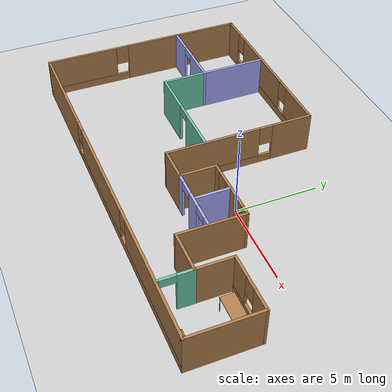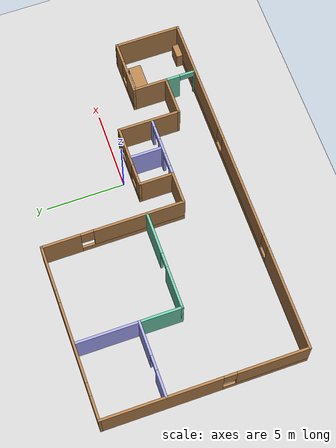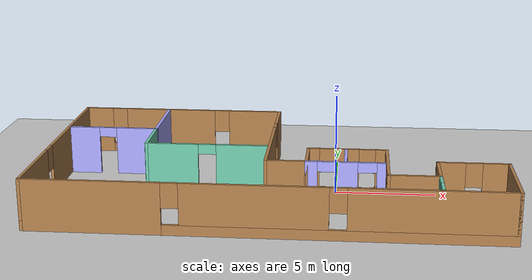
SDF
<sdf version="1.7">
 <world name="default">
  <model name="ground_plane">
   <static>1</static>
   <link name="link">
    <collision name="collision">
     <geometry><plane><normal>0 0 1</normal><size>100 100</size></plane></geometry>
     <surface>
      <contact><collide_bitmask>65535</collide_bitmask></contact>
      <friction><ode><mu>100</mu><mu2>50</mu2></ode></friction>
     </surface>
    </collision>
    <visual name="visual">
     <cast_shadows>0</cast_shadows>
     <geometry><plane><normal>0 0 1</normal><size>100 100</size></plane></geometry>
     <material>
      <script><uri>file://media/materials/scripts/gazebo.material</uri><name>Gazebo/Grey</name></script>
     </material>
    </visual>
   </link>
  </model>
  <model name="model">
   <pose>-2.971 -0.141859 0 0 -0 0</pose>
   <link name="Wall_1">
    <pose>-11.175 -0.000141 0 0 -0 -1.5708</pose>
    <visual name="Wall_1_Visual_0">
     <pose>-2.63427 0 1.25 0 -0 0</pose>
     <geometry><box><size>7.43146 0.15 2.5</size></box></geometry>
     <material>
      <script><uri>file://media/materials/scripts/gazebo.material</uri><name>Gazebo/Wood</name></script>
      <ambient>1 1 1 1</ambient>
     </material>
     <meta><layer>0</layer></meta>
    </visual>
    <collision name="Wall_1_Collision_0">
     <geometry><box><size>7.43146 0.15 2.5</size></box></geometry>
     <pose>-2.63427 0 1.25 0 -0 0</pose>
    </collision>
    <visual name="Wall_1_Visual_1">
     <pose>3.71573 0 0.25 0 -0 0</pose>
     <geometry><box><size>5.26854 0.15 0.5</size></box></geometry>
     <material>
      <script><uri>file://media/materials/scripts/gazebo.material</uri><name>Gazebo/Wood</name></script>
      <ambient>1 1 1 1</ambient>
     </material>
     <meta><layer>0</layer></meta>
    </visual>
    <collision name="Wall_1_Collision_1">
     <geometry><box><size>5.26854 0.15 0.5</size></box></geometry>
     <pose>3.71573 0 0.25 0 -0 0</pose>
    </collision>
    <visual name="Wall_1_Visual_2">
     <pose>4.11573 0 1.5 0 -0 0</pose>
     <geometry><box><size>4.46854 0.15 2</size></box></geometry>
     <material>
      <script><uri>file://media/materials/scripts/gazebo.material</uri><name>Gazebo/Wood</name></script>
      <ambient>1 1 1 1</ambient>
     </material>
     <meta><layer>0</layer></meta>
    </visual>
    <collision name="Wall_1_Collision_2">
     <geometry><box><size>4.46854 0.15 2</size></box></geometry>
     <pose>4.11573 0 1.5 0 -0 0</pose>
    </collision>
    <visual name="Wall_1_Visual_3">
     <pose>1.48146 0 1.9 0 -0 0</pose>
     <geometry><box><size>0.8 0.15 1.2</size></box></geometry>
     <material>
      <script><uri>file://media/materials/scripts/gazebo.material</uri><name>Gazebo/Wood</name></script>
      <ambient>1 1 1 1</ambient>
     </material>
     <meta><layer>0</layer></meta>
    </visual>
    <collision name="Wall_1_Collision_3">
     <geometry><box><size>0.8 0.15 1.2</size></box></geometry>
     <pose>1.48146 0 1.9 0 -0 0</pose>
    </collision>
   </link>
   <link name="Wall_10">
    <collision name="Wall_10_Collision">
     <geometry><box><size>2 0.15 2.5</size></box></geometry>
     <pose>0 0 1.25 0 -0 0</pose>
    </collision>
    <visual name="Wall_10_Visual">
     <pose>0 0 1.25 0 -0 0</pose>
     <geometry><box><size>2 0.15 2.5</size></box></geometry>
     <material>
      <script><uri>file://media/materials/scripts/gazebo.material</uri><name>Gazebo/Wood</name></script>
      <ambient>1 1 1 1</ambient>
     </material>
     <meta><layer>0</layer></meta>
    </visual>
    <pose>0.69978 -2.57513 0 0 -0 3.14158</pose>
   </link>
   <link name="Wall_19">
    <pose>-5.75 6.27486 0 0 -0 0</pose>
    <visual name="Wall_19_Visual_0">
     <pose>-4.73477 0 1.25 0 -0 0</pose>
     <geometry><box><size>1.53047 0.15 2.5</size></box></geometry>
     <material>
      <script><uri>file://media/materials/scripts/gazebo.material</uri><name>Gazebo/Wood</name></script>
      <ambient>1 1 1 1</ambient>
     </material>
     <meta><layer>0</layer></meta>
    </visual>
    <collision name="Wall_19_Collision_0">
     <geometry><box><size>1.53047 0.15 2.5</size></box></geometry>
     <pose>-4.73477 0 1.25 0 -0 0</pose>
    </collision>
    <visual name="Wall_19_Visual_1">
     <pose>0.765234 0 0.25 0 -0 0</pose>
     <geometry><box><size>9.46953 0.15 0.5</size></box></geometry>
     <material>
      <script><uri>file://media/materials/scripts/gazebo.material</uri><name>Gazebo/Wood</name></script>
      <ambient>1 1 1 1</ambient>
     </material>
     <meta><layer>0</layer></meta>
    </visual>
    <collision name="Wall_19_Collision_1">
     <geometry><box><size>9.46953 0.15 0.5</size></box></geometry>
     <pose>0.765234 0 0.25 0 -0 0</pose>
    </collision>
    <visual name="Wall_19_Visual_2">
     <pose>-0.67987 0 1.5 0 -0 0</pose>
     <geometry><box><size>4.97933 0.15 2</size></box></geometry>
     <material>
      <script><uri>file://media/materials/scripts/gazebo.material</uri><name>Gazebo/Wood</name></script>
      <ambient>1 1 1 1</ambient>
     </material>
     <meta><layer>0</layer></meta>
    </visual>
    <collision name="Wall_19_Collision_2">
     <geometry><box><size>4.97933 0.15 2</size></box></geometry>
     <pose>-0.67987 0 1.5 0 -0 0</pose>
    </collision>
    <visual name="Wall_19_Visual_3">
     <pose>4.0549 0 1.5 0 -0 0</pose>
     <geometry><box><size>2.89021 0.15 2</size></box></geometry>
     <material>
      <script><uri>file://media/materials/scripts/gazebo.material</uri><name>Gazebo/Wood</name></script>
      <ambient>1 1 1 1</ambient>
     </material>
     <meta><layer>0</layer></meta>
    </visual>
    <collision name="Wall_19_Collision_3">
     <geometry><box><size>2.89021 0.15 2</size></box></geometry>
     <pose>4.0549 0 1.5 0 -0 0</pose>
    </collision>
    <visual name="Wall_19_Visual_4">
     <pose>-3.56953 0 1.9 0 -0 0</pose>
     <geometry><box><size>0.8 0.15 1.2</size></box></geometry>
     <material>
      <script><uri>file://media/materials/scripts/gazebo.material</uri><name>Gazebo/Wood</name></script>
      <ambient>1 1 1 1</ambient>
     </material>
     <meta><layer>0</layer></meta>
    </visual>
    <collision name="Wall_19_Collision_4">
     <geometry><box><size>0.8 0.15 1.2</size></box></geometry>
     <pose>-3.56953 0 1.9 0 -0 0</pose>
    </collision>
    <visual name="Wall_19_Visual_5">
     <pose>2.20979 0 1.9 0 -0 0</pose>
     <geometry><box><size>0.8 0.15 1.2</size></box></geometry>
     <material>
      <script><uri>file://media/materials/scripts/gazebo.material</uri><name>Gazebo/Wood</name></script>
      <ambient>1 1 1 1</ambient>
     </material>
     <meta><layer>0</layer></meta>
    </visual>
    <collision name="Wall_19_Collision_5">
     <geometry><box><size>0.8 0.15 1.2</size></box></geometry>
     <pose>2.20979 0 1.9 0 -0 0</pose>
    </collision>
   </link>
   <link name="Wall_2">
    <pose>0 -6.27514 0 0 -0 0</pose>
    <visual name="Wall_2_Visual_0">
     <pose>-7.97532 0 1.25 0 -0 0</pose>
     <geometry><box><size>6.54936 0.15 2.5</size></box></geometry>
     <material>
      <script><uri>file://media/materials/scripts/gazebo.material</uri><name>Gazebo/Wood</name></script>
      <ambient>1 1 1 1</ambient>
     </material>
     <meta><layer>0</layer></meta>
    </visual>
    <collision name="Wall_2_Collision_0">
     <geometry><box><size>6.54936 0.15 2.5</size></box></geometry>
     <pose>-7.97532 0 1.25 0 -0 0</pose>
    </collision>
    <visual name="Wall_2_Visual_1">
     <pose>3.27468 0 0.25 0 -0 0</pose>
     <geometry><box><size>15.9506 0.15 0.5</size></box></geometry>
     <material>
      <script><uri>file://media/materials/scripts/gazebo.material</uri><name>Gazebo/Wood</name></script>
      <ambient>1 1 1 1</ambient>
     </material>
     <meta><layer>0</layer></meta>
    </visual>
    <collision name="Wall_2_Collision_1">
     <geometry><box><size>15.9506 0.15 0.5</size></box></geometry>
     <pose>3.27468 0 0.25 0 -0 0</pose>
    </collision>
    <visual name="Wall_2_Visual_2">
     <pose>-0.528875 0 1.5 0 -0 0</pose>
     <geometry><box><size>6.74354 0.15 2</size></box></geometry>
     <material>
      <script><uri>file://media/materials/scripts/gazebo.material</uri><name>Gazebo/Wood</name></script>
      <ambient>1 1 1 1</ambient>
     </material>
     <meta><layer>0</layer></meta>
    </visual>
    <collision name="Wall_2_Collision_2">
     <geometry><box><size>6.74354 0.15 2</size></box></geometry>
     <pose>-0.528875 0 1.5 0 -0 0</pose>
    </collision>
    <visual name="Wall_2_Visual_3">
     <pose>7.44645 0 1.5 0 -0 0</pose>
     <geometry><box><size>7.6071 0.15 2</size></box></geometry>
     <material>
      <script><uri>file://media/materials/scripts/gazebo.material</uri><name>Gazebo/Wood</name></script>
      <ambient>1 1 1 1</ambient>
     </material>
     <meta><layer>0</layer></meta>
    </visual>
    <collision name="Wall_2_Collision_3">
     <geometry><box><size>7.6071 0.15 2</size></box></geometry>
     <pose>7.44645 0 1.5 0 -0 0</pose>
    </collision>
    <visual name="Wall_2_Visual_4">
     <pose>-4.30065 0 1.9 0 -0 0</pose>
     <geometry><box><size>0.8 0.15 1.2</size></box></geometry>
     <material>
      <script><uri>file://media/materials/scripts/gazebo.material</uri><name>Gazebo/Wood</name></script>
      <ambient>1 1 1 1</ambient>
     </material>
     <meta><layer>0</layer></meta>
    </visual>
    <collision name="Wall_2_Collision_4">
     <geometry><box><size>0.8 0.15 1.2</size></box></geometry>
     <pose>-4.30065 0 1.9 0 -0 0</pose>
    </collision>
    <visual name="Wall_2_Visual_5">
     <pose>3.24289 0 1.9 0 -0 0</pose>
     <geometry><box><size>0.8 0.15 1.2</size></box></geometry>
     <material>
      <script><uri>file://media/materials/scripts/gazebo.material</uri><name>Gazebo/Wood</name></script>
      <ambient>1 1 1 1</ambient>
     </material>
     <meta><layer>0</layer></meta>
    </visual>
    <collision name="Wall_2_Collision_5">
     <geometry><box><size>0.8 0.15 1.2</size></box></geometry>
     <pose>3.24289 0 1.9 0 -0 0</pose>
    </collision>
   </link>
   <link name="Wall_20">
    <pose>-0.325 1.84986 0 0 -0 -1.5708</pose>
    <visual name="Wall_20_Visual_0">
     <pose>-3.26344 0 1.25 0 -0 0</pose>
     <geometry><box><size>2.47369 0.15 2.5</size></box></geometry>
     <material>
      <script><uri>file://media/materials/scripts/gazebo.material</uri><name>Gazebo/Wood</name></script>
      <ambient>1 1 1 1</ambient>
     </material>
     <meta><layer>0</layer></meta>
    </visual>
    <collision name="Wall_20_Collision_0">
     <geometry><box><size>2.47369 0.15 2.5</size></box></geometry>
     <pose>-3.26344 0 1.25 0 -0 0</pose>
    </collision>
    <visual name="Wall_20_Visual_1">
     <pose>1.23685 0 0.25 0 -0 0</pose>
     <geometry><box><size>6.52687 0.15 0.5</size></box></geometry>
     <material>
      <script><uri>file://media/materials/scripts/gazebo.material</uri><name>Gazebo/Wood</name></script>
      <ambient>1 1 1 1</ambient>
     </material>
     <meta><layer>0</layer></meta>
    </visual>
    <collision name="Wall_20_Collision_1">
     <geometry><box><size>6.52687 0.15 0.5</size></box></geometry>
     <pose>1.23685 0 0.25 0 -0 0</pose>
    </collision>
    <visual name="Wall_20_Visual_2">
     <pose>1.63685 0 1.5 0 -0 0</pose>
     <geometry><box><size>5.72687 0.15 2</size></box></geometry>
     <material>
      <script><uri>file://media/materials/scripts/gazebo.material</uri><name>Gazebo/Wood</name></script>
      <ambient>1 1 1 1</ambient>
     </material>
     <meta><layer>0</layer></meta>
    </visual>
    <collision name="Wall_20_Collision_2">
     <geometry><box><size>5.72687 0.15 2</size></box></geometry>
     <pose>1.63685 0 1.5 0 -0 0</pose>
    </collision>
    <visual name="Wall_20_Visual_3">
     <pose>-1.62659 0 1.9 0 -0 0</pose>
     <geometry><box><size>0.8 0.15 1.2</size></box></geometry>
     <material>
      <script><uri>file://media/materials/scripts/gazebo.material</uri><name>Gazebo/Wood</name></script>
      <ambient>1 1 1 1</ambient>
     </material>
     <meta><layer>0</layer></meta>
    </visual>
    <collision name="Wall_20_Collision_3">
     <geometry><box><size>0.8 0.15 1.2</size></box></geometry>
     <pose>-1.62659 0 1.9 0 -0 0</pose>
    </collision>
   </link>
   <link name="Wall_22">
    <pose>7.825 -5.25014 0 0 -0 -1.5708</pose>
    <visual name="Wall_22_Visual_0">
     <pose>-0.510461 0 1.25 0 -0 0</pose>
     <geometry><box><size>0.979077 0.15 2.5</size></box></geometry>
     <material>
      <script><uri>file://media/materials/scripts/gazebo.material</uri><name>Gazebo/Grey</name></script>
      <ambient>0.435294 0.796078 0.67451 1</ambient>
     </material>
     <meta><layer>0</layer></meta>
    </visual>
    <collision name="Wall_22_Collision_0">
     <geometry><box><size>0.979077 0.15 2.5</size></box></geometry>
     <pose>-0.510461 0 1.25 0 -0 0</pose>
    </collision>
    <visual name="Wall_22_Visual_1">
     <pose>0.939539 0 1.25 0 -0 0</pose>
     <geometry><box><size>0.120923 0.15 2.5</size></box></geometry>
     <material>
      <script><uri>file://media/materials/scripts/gazebo.material</uri><name>Gazebo/Grey</name></script>
      <ambient>0.435294 0.796078 0.67451 1</ambient>
     </material>
     <meta><layer>0</layer></meta>
    </visual>
    <collision name="Wall_22_Collision_1">
     <geometry><box><size>0.120923 0.15 2.5</size></box></geometry>
     <pose>0.939539 0 1.25 0 -0 0</pose>
    </collision>
    <visual name="Wall_22_Visual_2">
     <pose>0.429077 0 2.25 0 -0 0</pose>
     <geometry><box><size>0.9 0.15 0.5</size></box></geometry>
     <material>
      <script><uri>file://media/materials/scripts/gazebo.material</uri><name>Gazebo/Grey</name></script>
      <ambient>0.435294 0.796078 0.67451 1</ambient>
     </material>
     <meta><layer>0</layer></meta>
    </visual>
    <collision name="Wall_22_Collision_2">
     <geometry><box><size>0.9 0.15 0.5</size></box></geometry>
     <pose>0.429077 0 2.25 0 -0 0</pose>
    </collision>
   </link>
   <link name="Wall_25">
    <collision name="Wall_25_Collision">
     <geometry><box><size>4 0.15 2.5</size></box></geometry>
     <pose>0 0 1.25 0 -0 0</pose>
    </collision>
    <visual name="Wall_25_Visual">
     <pose>0 0 1.25 0 -0 0</pose>
     <geometry><box><size>4 0.15 2.5</size></box></geometry>
     <material>
      <script><uri>file://media/materials/scripts/gazebo.material</uri><name>Gazebo/Grey</name></script>
      <ambient>0.666667 0.666667 1 1</ambient>
     </material>
     <meta><layer>0</layer></meta>
    </visual>
    <pose>-6.52178 4.25874 0 0 -0 -1.57091</pose>
   </link>
   <link name="Wall_26">
    <pose>-8.82178 2.33374 0 0 -0 -3.14154</pose>
    <visual name="Wall_26_Visual_0">
     <pose>-1.28498 0 1.25 0 -0 0</pose>
     <geometry><box><size>2.18005 0.15 2.5</size></box></geometry>
     <material>
      <script><uri>file://media/materials/scripts/gazebo.material</uri><name>Gazebo/Grey</name></script>
      <ambient>0.666667 0.666667 1 1</ambient>
     </material>
     <meta><layer>0</layer></meta>
    </visual>
    <collision name="Wall_26_Collision_0">
     <geometry><box><size>2.18005 0.15 2.5</size></box></geometry>
     <pose>-1.28498 0 1.25 0 -0 0</pose>
    </collision>
    <visual name="Wall_26_Visual_1">
     <pose>1.54002 0 1.25 0 -0 0</pose>
     <geometry><box><size>1.66995 0.15 2.5</size></box></geometry>
     <material>
      <script><uri>file://media/materials/scripts/gazebo.material</uri><name>Gazebo/Grey</name></script>
      <ambient>0.666667 0.666667 1 1</ambient>
     </material>
     <meta><layer>0</layer></meta>
    </visual>
    <collision name="Wall_26_Collision_1">
     <geometry><box><size>1.66995 0.15 2.5</size></box></geometry>
     <pose>1.54002 0 1.25 0 -0 0</pose>
    </collision>
    <visual name="Wall_26_Visual_2">
     <pose>0.255046 0 2.25 0 -0 0</pose>
     <geometry><box><size>0.9 0.15 0.5</size></box></geometry>
     <material>
      <script><uri>file://media/materials/scripts/gazebo.material</uri><name>Gazebo/Grey</name></script>
      <ambient>0.666667 0.666667 1 1</ambient>
     </material>
     <meta><layer>0</layer></meta>
    </visual>
    <collision name="Wall_26_Collision_2">
     <geometry><box><size>0.9 0.15 0.5</size></box></geometry>
     <pose>0.255046 0 2.25 0 -0 0</pose>
    </collision>
   </link>
   <link name="Wall_28">
    <collision name="Wall_28_Collision">
     <geometry><box><size>2.75 0.15 2.5</size></box></geometry>
     <pose>0 0 1.25 0 -0 0</pose>
    </collision>
    <visual name="Wall_28_Visual">
     <pose>0 0 1.25 0 -0 0</pose>
     <geometry><box><size>2.75 0.15 2.5</size></box></geometry>
     <material>
      <script><uri>file://media/materials/scripts/gazebo.material</uri><name>Gazebo/Grey</name></script>
      <ambient>0.435294 0.796078 0.67451 1</ambient>
     </material>
     <meta><layer>0</layer></meta>
    </visual>
    <pose>-6.522 1.03386 0 0 -0 -1.5708</pose>
   </link>
   <link name="Wall_29">
    <pose>-3.472 -0.266141 0 0 -0 0</pose>
    <visual name="Wall_29_Visual_0">
     <pose>-1.77642 0 1.25 0 -0 0</pose>
     <geometry><box><size>2.69717 0.15 2.5</size></box></geometry>
     <material>
      <script><uri>file://media/materials/scripts/gazebo.material</uri><name>Gazebo/Grey</name></script>
      <ambient>0.435294 0.796078 0.67451 1</ambient>
     </material>
     <meta><layer>0</layer></meta>
    </visual>
    <collision name="Wall_29_Collision_0">
     <geometry><box><size>2.69717 0.15 2.5</size></box></geometry>
     <pose>-1.77642 0 1.25 0 -0 0</pose>
    </collision>
    <visual name="Wall_29_Visual_1">
     <pose>1.79858 0 1.25 0 -0 0</pose>
     <geometry><box><size>2.65283 0.15 2.5</size></box></geometry>
     <material>
      <script><uri>file://media/materials/scripts/gazebo.material</uri><name>Gazebo/Grey</name></script>
      <ambient>0.435294 0.796078 0.67451 1</ambient>
     </material>
     <meta><layer>0</layer></meta>
    </visual>
    <collision name="Wall_29_Collision_1">
     <geometry><box><size>2.65283 0.15 2.5</size></box></geometry>
     <pose>1.79858 0 1.25 0 -0 0</pose>
    </collision>
    <visual name="Wall_29_Visual_2">
     <pose>0.022167 0 2.25 0 -0 0</pose>
     <geometry><box><size>0.9 0.15 0.5</size></box></geometry>
     <material>
      <script><uri>file://media/materials/scripts/gazebo.material</uri><name>Gazebo/Grey</name></script>
      <ambient>0.435294 0.796078 0.67451 1</ambient>
     </material>
     <meta><layer>0</layer></meta>
    </visual>
    <collision name="Wall_29_Collision_2">
     <geometry><box><size>0.9 0.15 0.5</size></box></geometry>
     <pose>0.022167 0 2.25 0 -0 0</pose>
    </collision>
   </link>
   <link name="Wall_3">
    <collision name="Wall_3_Collision">
     <geometry><box><size>4.2 0.15 2.5</size></box></geometry>
     <pose>0 0 1.25 0 -0 0</pose>
    </collision>
    <visual name="Wall_3_Visual">
     <pose>0 0 1.25 0 -0 0</pose>
     <geometry><box><size>4.2 0.15 2.5</size></box></geometry>
     <material>
      <script><uri>file://media/materials/scripts/gazebo.material</uri><name>Gazebo/Wood</name></script>
      <ambient>1 1 1 1</ambient>
     </material>
     <meta><layer>0</layer></meta>
    </visual>
    <pose>11.175 -4.25014 0 0 -0 1.5708</pose>
   </link>
   <link name="Wall_31">
    <pose>3.54978 -2.57513 0 0 -0 5e-06</pose>
    <visual name="Wall_31_Visual_0">
     <pose>-1.69788 0 1.25 0 -0 0</pose>
     <geometry><box><size>0.604236 0.15 2.5</size></box></geometry>
     <material>
      <script><uri>file://media/materials/scripts/gazebo.material</uri><name>Gazebo/Grey</name></script>
      <ambient>0.666667 0.666667 1 1</ambient>
     </material>
     <meta><layer>0</layer></meta>
    </visual>
    <collision name="Wall_31_Collision_0">
     <geometry><box><size>0.604236 0.15 2.5</size></box></geometry>
     <pose>-1.69788 0 1.25 0 -0 0</pose>
    </collision>
    <visual name="Wall_31_Visual_1">
     <pose>0.012277 0 1.25 0 -0 0</pose>
     <geometry><box><size>1.01608 0.15 2.5</size></box></geometry>
     <material>
      <script><uri>file://media/materials/scripts/gazebo.material</uri><name>Gazebo/Grey</name></script>
      <ambient>0.666667 0.666667 1 1</ambient>
     </material>
     <meta><layer>0</layer></meta>
    </visual>
    <collision name="Wall_31_Collision_1">
     <geometry><box><size>1.01608 0.15 2.5</size></box></geometry>
     <pose>0.012277 0 1.25 0 -0 0</pose>
    </collision>
    <visual name="Wall_31_Visual_2">
     <pose>1.71016 0 1.25 0 -0 0</pose>
     <geometry><box><size>0.579681 0.15 2.5</size></box></geometry>
     <material>
      <script><uri>file://media/materials/scripts/gazebo.material</uri><name>Gazebo/Grey</name></script>
      <ambient>0.666667 0.666667 1 1</ambient>
     </material>
     <meta><layer>0</layer></meta>
    </visual>
    <collision name="Wall_31_Collision_2">
     <geometry><box><size>0.579681 0.15 2.5</size></box></geometry>
     <pose>1.71016 0 1.25 0 -0 0</pose>
    </collision>
    <visual name="Wall_31_Visual_3">
     <pose>-0.945764 0 2.25 0 -0 0</pose>
     <geometry><box><size>0.9 0.15 0.5</size></box></geometry>
     <material>
      <script><uri>file://media/materials/scripts/gazebo.material</uri><name>Gazebo/Grey</name></script>
      <ambient>0.666667 0.666667 1 1</ambient>
     </material>
     <meta><layer>0</layer></meta>
    </visual>
    <collision name="Wall_31_Collision_3">
     <geometry><box><size>0.9 0.15 0.5</size></box></geometry>
     <pose>-0.945764 0 2.25 0 -0 0</pose>
    </collision>
    <visual name="Wall_31_Visual_4">
     <pose>0.970319 0 2.25 0 -0 0</pose>
     <geometry><box><size>0.9 0.15 0.5</size></box></geometry>
     <material>
      <script><uri>file://media/materials/scripts/gazebo.material</uri><name>Gazebo/Grey</name></script>
      <ambient>0.666667 0.666667 1 1</ambient>
     </material>
     <meta><layer>0</layer></meta>
    </visual>
    <collision name="Wall_31_Collision_4">
     <geometry><box><size>0.9 0.15 0.5</size></box></geometry>
     <pose>0.970319 0 2.25 0 -0 0</pose>
    </collision>
   </link>
   <link name="Wall_33">
    <collision name="Wall_33_Collision">
     <geometry><box><size>2 0.15 2.5</size></box></geometry>
     <pose>0 0 1.25 0 -0 0</pose>
    </collision>
    <visual name="Wall_33_Visual">
     <pose>0 0 1.25 0 -0 0</pose>
     <geometry><box><size>2 0.15 2.5</size></box></geometry>
     <material>
      <script><uri>file://media/materials/scripts/gazebo.material</uri><name>Gazebo/Grey</name></script>
      <ambient>0.666667 0.666667 1 1</ambient>
     </material>
     <meta><layer>0</layer></meta>
    </visual>
    <pose>3.48579 -1.49406 0 0 -0 -1.5708</pose>
   </link>
   <link name="Wall_4">
    <pose>9.5 -2.22514 0 0 -0 3.14159</pose>
    <visual name="Wall_4_Visual_0">
     <pose>-1.09466 0 1.25 0 -0 0</pose>
     <geometry><box><size>1.31068 0.15 2.5</size></box></geometry>
     <material>
      <script><uri>file://media/materials/scripts/gazebo.material</uri><name>Gazebo/Wood</name></script>
      <ambient>1 1 1 1</ambient>
     </material>
     <meta><layer>0</layer></meta>
    </visual>
    <collision name="Wall_4_Collision_0">
     <geometry><box><size>1.31068 0.15 2.5</size></box></geometry>
     <pose>-1.09466 0 1.25 0 -0 0</pose>
    </collision>
    <visual name="Wall_4_Visual_1">
     <pose>0.655341 0 0.25 0 -0 0</pose>
     <geometry><box><size>2.18932 0.15 0.5</size></box></geometry>
     <material>
      <script><uri>file://media/materials/scripts/gazebo.material</uri><name>Gazebo/Wood</name></script>
      <ambient>1 1 1 1</ambient>
     </material>
     <meta><layer>0</layer></meta>
    </visual>
    <collision name="Wall_4_Collision_1">
     <geometry><box><size>2.18932 0.15 0.5</size></box></geometry>
     <pose>0.655341 0 0.25 0 -0 0</pose>
    </collision>
    <visual name="Wall_4_Visual_2">
     <pose>1.05534 0 1.5 0 -0 0</pose>
     <geometry><box><size>1.38932 0.15 2</size></box></geometry>
     <material>
      <script><uri>file://media/materials/scripts/gazebo.material</uri><name>Gazebo/Wood</name></script>
      <ambient>1 1 1 1</ambient>
     </material>
     <meta><layer>0</layer></meta>
    </visual>
    <collision name="Wall_4_Collision_2">
     <geometry><box><size>1.38932 0.15 2</size></box></geometry>
     <pose>1.05534 0 1.5 0 -0 0</pose>
    </collision>
    <visual name="Wall_4_Visual_3">
     <pose>-0.039318 0 1.9 0 -0 0</pose>
     <geometry><box><size>0.8 0.15 1.2</size></box></geometry>
     <material>
      <script><uri>file://media/materials/scripts/gazebo.material</uri><name>Gazebo/Wood</name></script>
      <ambient>1 1 1 1</ambient>
     </material>
     <meta><layer>0</layer></meta>
    </visual>
    <collision name="Wall_4_Collision_3">
     <geometry><box><size>0.8 0.15 1.2</size></box></geometry>
     <pose>-0.039318 0 1.9 0 -0 0</pose>
    </collision>
   </link>
   <link name="Wall_5">
    <collision name="Wall_5_Collision">
     <geometry><box><size>2.25 0.15 2.5</size></box></geometry>
     <pose>0 0 1.25 0 -0 0</pose>
    </collision>
    <visual name="Wall_5_Visual">
     <pose>0 0 1.25 0 -0 0</pose>
     <geometry><box><size>2.25 0.15 2.5</size></box></geometry>
     <material>
      <script><uri>file://media/materials/scripts/gazebo.material</uri><name>Gazebo/Wood</name></script>
      <ambient>1 1 1 1</ambient>
     </material>
     <meta><layer>0</layer></meta>
    </visual>
    <pose>7.825 -3.27514 0 0 -0 -1.5708</pose>
   </link>
   <link name="Wall_6">
    <collision name="Wall_6_Collision">
     <geometry><box><size>2.5 0.15 2.5</size></box></geometry>
     <pose>0 0 1.25 0 -0 0</pose>
    </collision>
    <visual name="Wall_6_Visual">
     <pose>0 0 1.25 0 -0 0</pose>
     <geometry><box><size>2.5 0.15 2.5</size></box></geometry>
     <material>
      <script><uri>file://media/materials/scripts/gazebo.material</uri><name>Gazebo/Wood</name></script>
      <ambient>1 1 1 1</ambient>
     </material>
     <meta><layer>0</layer></meta>
    </visual>
    <pose>6.65 -4.32514 0 0 -0 3.14159</pose>
   </link>
   <link name="Wall_7">
    <collision name="Wall_7_Collision">
     <geometry><box><size>4 0.15 2.5</size></box></geometry>
     <pose>0 0 1.25 0 -0 0</pose>
    </collision>
    <visual name="Wall_7_Visual">
     <pose>0 0 1.25 0 -0 0</pose>
     <geometry><box><size>4 0.15 2.5</size></box></geometry>
     <material>
      <script><uri>file://media/materials/scripts/gazebo.material</uri><name>Gazebo/Wood</name></script>
      <ambient>1 1 1 1</ambient>
     </material>
     <meta><layer>0</layer></meta>
    </visual>
    <pose>5.475 -2.40014 0 0 -0 1.5708</pose>
   </link>
   <link name="Wall_8">
    <pose>3.55 -0.475141 0 0 -0 3.14159</pose>
    <visual name="Wall_8_Visual_0">
     <pose>-1.68521 0 1.25 0 -0 0</pose>
     <geometry><box><size>0.62957 0.15 2.5</size></box></geometry>
     <material>
      <script><uri>file://media/materials/scripts/gazebo.material</uri><name>Gazebo/Wood</name></script>
      <ambient>1 1 1 1</ambient>
     </material>
     <meta><layer>0</layer></meta>
    </visual>
    <collision name="Wall_8_Collision_0">
     <geometry><box><size>0.62957 0.15 2.5</size></box></geometry>
     <pose>-1.68521 0 1.25 0 -0 0</pose>
    </collision>
    <visual name="Wall_8_Visual_1">
     <pose>0.314785 0 0.25 0 -0 0</pose>
     <geometry><box><size>3.37043 0.15 0.5</size></box></geometry>
     <material>
      <script><uri>file://media/materials/scripts/gazebo.material</uri><name>Gazebo/Wood</name></script>
      <ambient>1 1 1 1</ambient>
     </material>
     <meta><layer>0</layer></meta>
    </visual>
    <collision name="Wall_8_Collision_1">
     <geometry><box><size>3.37043 0.15 0.5</size></box></geometry>
     <pose>0.314785 0 0.25 0 -0 0</pose>
    </collision>
    <visual name="Wall_8_Visual_2">
     <pose>0.00293 0 1.5 0 -0 0</pose>
     <geometry><box><size>1.14672 0.15 2</size></box></geometry>
     <material>
      <script><uri>file://media/materials/scripts/gazebo.material</uri><name>Gazebo/Wood</name></script>
      <ambient>1 1 1 1</ambient>
     </material>
     <meta><layer>0</layer></meta>
    </visual>
    <collision name="Wall_8_Collision_2">
     <geometry><box><size>1.14672 0.15 2</size></box></geometry>
     <pose>0.00293 0 1.5 0 -0 0</pose>
    </collision>
    <visual name="Wall_8_Visual_3">
     <pose>1.68815 0 1.5 0 -0 0</pose>
     <geometry><box><size>0.62371 0.15 2</size></box></geometry>
     <material>
      <script><uri>file://media/materials/scripts/gazebo.material</uri><name>Gazebo/Wood</name></script>
      <ambient>1 1 1 1</ambient>
     </material>
     <meta><layer>0</layer></meta>
    </visual>
    <collision name="Wall_8_Collision_3">
     <geometry><box><size>0.62371 0.15 2</size></box></geometry>
     <pose>1.68815 0 1.5 0 -0 0</pose>
    </collision>
    <visual name="Wall_8_Visual_4">
     <pose>-0.97043 0 1.9 0 -0 0</pose>
     <geometry><box><size>0.8 0.15 1.2</size></box></geometry>
     <material>
      <script><uri>file://media/materials/scripts/gazebo.material</uri><name>Gazebo/Wood</name></script>
      <ambient>1 1 1 1</ambient>
     </material>
     <meta><layer>0</layer></meta>
    </visual>
    <collision name="Wall_8_Collision_4">
     <geometry><box><size>0.8 0.15 1.2</size></box></geometry>
     <pose>-0.97043 0 1.9 0 -0 0</pose>
    </collision>
    <visual name="Wall_8_Visual_5">
     <pose>0.97629 0 1.9 0 -0 0</pose>
     <geometry><box><size>0.8 0.15 1.2</size></box></geometry>
     <material>
      <script><uri>file://media/materials/scripts/gazebo.material</uri><name>Gazebo/Wood</name></script>
      <ambient>1 1 1 1</ambient>
     </material>
     <meta><layer>0</layer></meta>
    </visual>
    <collision name="Wall_8_Collision_5">
     <geometry><box><size>0.8 0.15 1.2</size></box></geometry>
     <pose>0.97629 0 1.9 0 -0 0</pose>
    </collision>
   </link>
   <link name="Wall_9">
    <collision name="Wall_9_Collision">
     <geometry><box><size>2.25 0.15 2.5</size></box></geometry>
     <pose>0 0 1.25 0 -0 0</pose>
    </collision>
    <visual name="Wall_9_Visual">
     <pose>0 0 1.25 0 -0 0</pose>
     <geometry><box><size>2.25 0.15 2.5</size></box></geometry>
     <material>
      <script><uri>file://media/materials/scripts/gazebo.material</uri><name>Gazebo/Wood</name></script>
      <ambient>1 1 1 1</ambient>
     </material>
     <meta><layer>0</layer></meta>
    </visual>
    <pose>1.625 -1.52514 0 0 -0 -1.5708</pose>
   </link>
   <static>1</static>
  </model>
  <model name="table_3">
   <static>1</static>
   <link name="link">
    <collision name="surface">
     <pose>0 0 1 0 -0 0</pose>
     <geometry><box><size>1.5 0.8 0.03</size></box></geometry>
     <surface><friction><ode><mu>0.6</mu><mu2>0.6</mu2></ode></friction></surface>
    </collision>
    <visual name="visual1">
     <pose>0 0 1 0 -0 0</pose>
     <geometry><box><size>1.5 0.8 0.03</size></box></geometry>
     <material>
      <script><uri>file://media/materials/scripts/gazebo.material</uri><name>Gazebo/Wood</name></script>
     </material>
    </visual>
    <collision name="front_left_leg">
     <pose>0.68 0.38 0.5 0 -0 0</pose>
     <geometry><cylinder><radius>0.02</radius><length>1</length></cylinder></geometry>
    </collision>
    <visual name="front_left_leg">
     <pose>0.68 0.38 0.5 0 -0 0</pose>
     <geometry><cylinder><radius>0.02</radius><length>1</length></cylinder></geometry>
     <material>
      <script><uri>file://media/materials/scripts/gazebo.material</uri><name>Gazebo/Grey</name></script>
     </material>
    </visual>
    <collision name="front_right_leg">
     <pose>0.68 -0.38 0.5 0 -0 0</pose>
     <geometry><cylinder><radius>0.02</radius><length>1</length></cylinder></geometry>
    </collision>
    <visual name="front_right_leg">
     <pose>0.68 -0.38 0.5 0 -0 0</pose>
     <geometry><cylinder><radius>0.02</radius><length>1</length></cylinder></geometry>
     <material>
      <script><uri>file://media/materials/scripts/gazebo.material</uri><name>Gazebo/Grey</name></script>
     </material>
    </visual>
    <collision name="back_right_leg">
     <pose>-0.68 -0.38 0.5 0 -0 0</pose>
     <geometry><cylinder><radius>0.02</radius><length>1</length></cylinder></geometry>
    </collision>
    <visual name="back_right_leg">
     <pose>-0.68 -0.38 0.5 0 -0 0</pose>
     <geometry><cylinder><radius>0.02</radius><length>1</length></cylinder></geometry>
     <material>
      <script><uri>file://media/materials/scripts/gazebo.material</uri><name>Gazebo/Grey</name></script>
     </material>
    </visual>
    <collision name="back_left_leg">
     <pose>-0.68 0.38 0.5 0 -0 0</pose>
     <geometry><cylinder><radius>0.02</radius><length>1</length></cylinder></geometry>
    </collision>
    <visual name="back_left_leg">
     <pose>-0.68 0.38 0.5 0 -0 0</pose>
     <geometry><cylinder><radius>0.02</radius><length>1</length></cylinder></geometry>
     <material>
      <script><uri>file://media/materials/scripts/gazebo.material</uri><name>Gazebo/Grey</name></script>
     </material>
    </visual>
   </link>
   <pose>6.46754 -3.14811 0 0 -0 0</pose>
  </model>
  <model name="bookshelf_0">
   <static>1</static>
   <link name="link">
    <inertial><mass>1</mass></inertial>
    <collision name="back">
     <pose>0 0.005 0.6 0 -0 0</pose>
     <geometry><box><size>0.9 0.01 1.2</size></box></geometry>
    </collision>
    <visual name="visual1">
     <pose>0 0.005 0.6 0 -0 0</pose>
     <geometry><box><size>0.9 0.01 1.2</size></box></geometry>
     <material>
      <script><uri>file://media/materials/scripts/gazebo.material</uri><name>Gazebo/Wood</name></script>
     </material>
    </visual>
    <collision name="left_side">
     <pose>0.45 -0.195 0.6 0 -0 0</pose>
     <geometry><box><size>0.02 0.4 1.2</size></box></geometry>
    </collision>
    <visual name="visual2">
     <pose>0.45 -0.195 0.6 0 -0 0</pose>
     <geometry><box><size>0.02 0.4 1.2</size></box></geometry>
     <material>
      <script><uri>file://media/materials/scripts/gazebo.material</uri><name>Gazebo/Wood</name></script>
     </material>
    </visual>
    <collision name="right_side">
     <pose>-0.45 -0.195 0.6 0 -0 0</pose>
     <geometry><box><size>0.02 0.4 1.2</size></box></geometry>
    </collision>
    <visual name="visual3">
     <pose>-0.45 -0.195 0.6 0 -0 0</pose>
     <geometry><box><size>0.02 0.4 1.2</size></box></geometry>
     <material>
      <script><uri>file://media/materials/scripts/gazebo.material</uri><name>Gazebo/Wood</name></script>
     </material>
    </visual>
    <collision name="bottom">
     <pose>0 -0.195 0.03 0 -0 0</pose>
     <geometry><box><size>0.88 0.4 0.06</size></box></geometry>
    </collision>
    <visual name="visual4">
     <pose>0 -0.195 0.03 0 -0 0</pose>
     <geometry><box><size>0.88 0.4 0.06</size></box></geometry>
     <material>
      <script><uri>file://media/materials/scripts/gazebo.material</uri><name>Gazebo/Wood</name></script>
     </material>
    </visual>
    <collision name="top">
     <pose>0 -0.195 1.19 0 -0 0</pose>
     <geometry><box><size>0.88 0.4 0.02</size></box></geometry>
    </collision>
    <visual name="visual5">
     <pose>0 -0.195 1.19 0 -0 0</pose>
     <geometry><box><size>0.88 0.4 0.02</size></box></geometry>
     <material>
      <script><uri>file://media/materials/scripts/gazebo.material</uri><name>Gazebo/Wood</name></script>
     </material>
    </visual>
    <collision name="low_shelf">
     <pose>0 -0.195 0.43 0 -0 0</pose>
     <geometry><box><size>0.88 0.4 0.02</size></box></geometry>
    </collision>
    <visual name="visual6">
     <pose>0 -0.195 0.43 0 -0 0</pose>
     <geometry><box><size>0.88 0.4 0.02</size></box></geometry>
     <material>
      <script><uri>file://media/materials/scripts/gazebo.material</uri><name>Gazebo/Wood</name></script>
     </material>
    </visual>
    <collision name="high_shelf">
     <pose>0 -0.195 0.8 0 -0 0</pose>
     <geometry><box><size>0.88 0.4 0.02</size></box></geometry>
    </collision>
    <visual name="visual7">
     <pose>0 -0.195 0.8 0 -0 0</pose>
     <geometry><box><size>0.88 0.4 0.02</size></box></geometry>
     <material>
      <script><uri>file://media/materials/scripts/gazebo.material</uri><name>Gazebo/Wood</name></script>
     </material>
    </visual>
   </link>
   <pose>7.3297 -5.92411 0 0 -0 0</pose>
  </model>
 </world>
</sdf>
